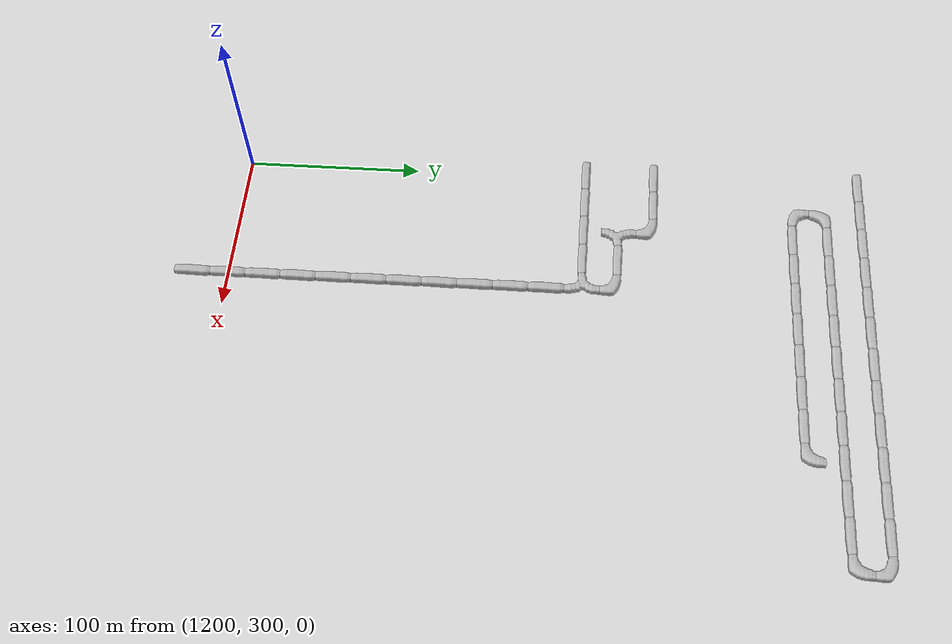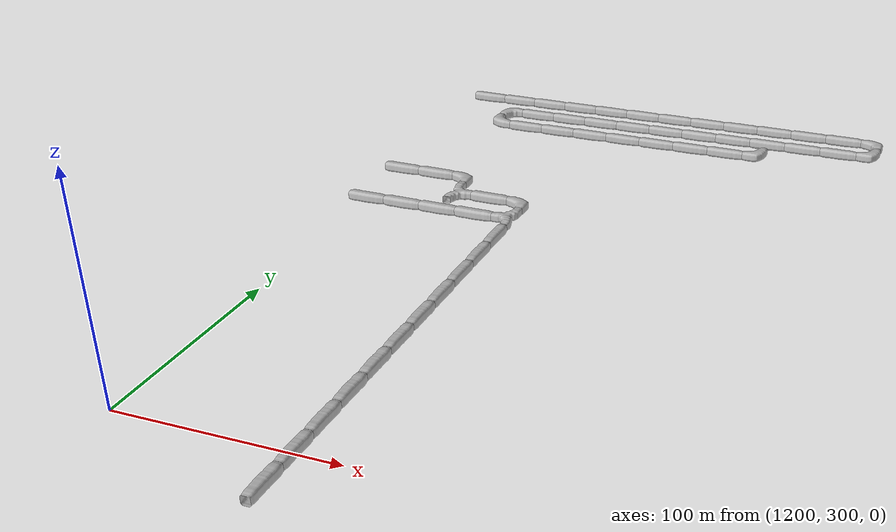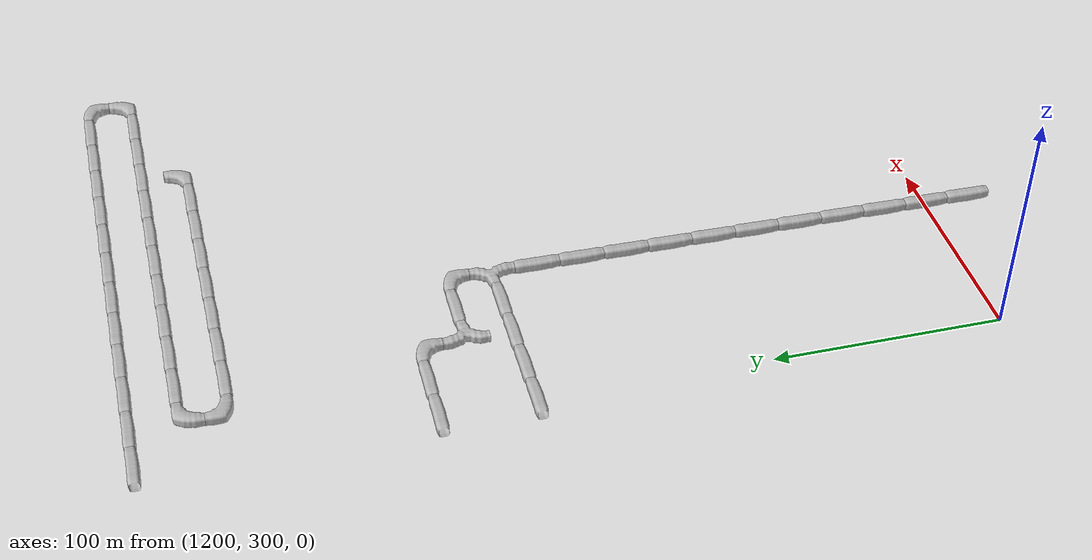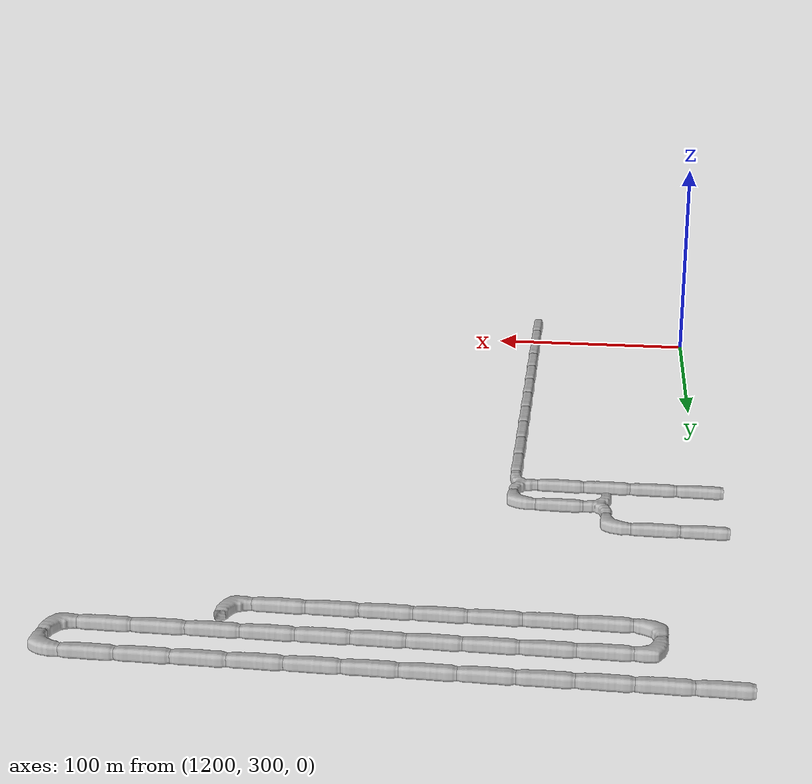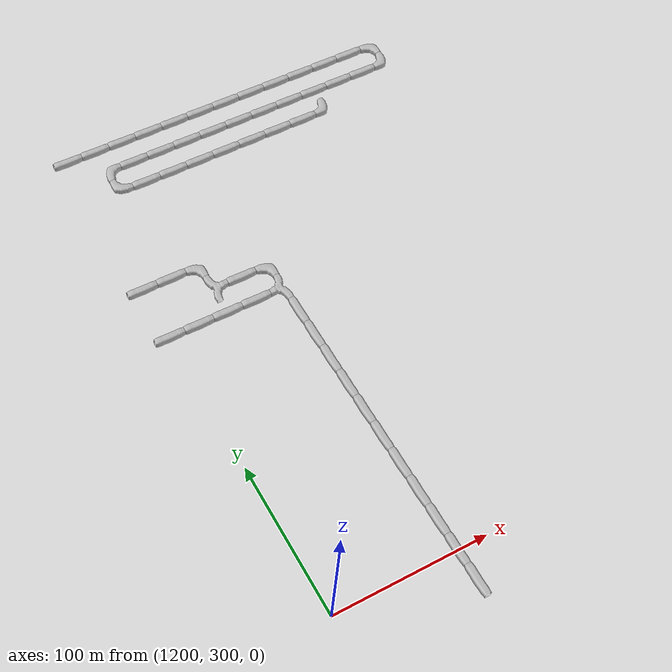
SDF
<sdf version="1.6">
 <world name="cave_32000_2">
  <include>
   <static>true</static>
   <name>cave_64_14</name>
   <pose>1280 280 0 0 0 0.0</pose>
   <uri>model://cave_straight_20m</uri>
  </include>
  <include>
   <static>true</static>
   <name>cave_64_15</name>
   <pose>1280 300 0 0 0 0.0</pose>
   <uri>model://cave_straight_20m</uri>
  </include>
  <include>
   <static>true</static>
   <name>cave_64_16</name>
   <pose>1280 320 0 0 0 0.0</pose>
   <uri>model://cave_straight_20m</uri>
  </include>
  <include>
   <static>true</static>
   <name>cave_64_17</name>
   <pose>1280 340 0 0 0 0.0</pose>
   <uri>model://cave_straight_20m</uri>
  </include>
  <include>
   <static>true</static>
   <name>cave_64_18</name>
   <pose>1280 360 0 0 0 0.0</pose>
   <uri>model://cave_straight_20m</uri>
  </include>
  <include>
   <static>true</static>
   <name>cave_64_19</name>
   <pose>1280 380 0 0 0 0.0</pose>
   <uri>model://cave_straight_20m</uri>
  </include>
  <include>
   <static>true</static>
   <name>cave_64_20</name>
   <pose>1280 400 0 0 0 0.0</pose>
   <uri>model://cave_straight_20m</uri>
  </include>
  <include>
   <static>true</static>
   <name>cave_64_21</name>
   <pose>1280 420 0 0 0 0.0</pose>
   <uri>model://cave_straight_20m</uri>
  </include>
  <include>
   <static>true</static>
   <name>cave_64_22</name>
   <pose>1280 440 0 0 0 0.0</pose>
   <uri>model://cave_straight_20m</uri>
  </include>
  <include>
   <static>true</static>
   <name>cave_64_23</name>
   <pose>1280 460 0 0 0 0.0</pose>
   <uri>model://cave_straight_20m</uri>
  </include>
  <include>
   <static>true</static>
   <name>cave_64_24</name>
   <pose>1280 480 0 0 0 0.0</pose>
   <uri>model://cave_straight_20m</uri>
  </include>
  <include>
   <static>true</static>
   <name>cave_64_25</name>
   <pose>1280 500 0 0 0 1.5707963267948966</pose>
   <uri>model://cave_3way_20m</uri>
  </include>
  <include>
   <static>true</static>
   <name>cave_63_25</name>
   <pose>1260 500 0 0 0 1.5707963267948966</pose>
   <uri>model://cave_straight_20m</uri>
  </include>
  <include>
   <static>true</static>
   <name>cave_62_25</name>
   <pose>1240 500 0 0 0 1.5707963267948966</pose>
   <uri>model://cave_straight_20m</uri>
  </include>
  <include>
   <static>true</static>
   <name>cave_61_25</name>
   <pose>1220 500 0 0 0 1.5707963267948966</pose>
   <uri>model://cave_straight_20m</uri>
  </include>
  <include>
   <static>true</static>
   <name>cave_60_25</name>
   <pose>1200 500 0 0 0 1.5707963267948966</pose>
   <uri>model://cave_straight_20m</uri>
  </include>
  <include>
   <static>true</static>
   <name>cave_64_26</name>
   <pose>1280 520 0 0 0 3.141592653589793</pose>
   <uri>model://cave_L_20m</uri>
  </include>
  <include>
   <static>true</static>
   <name>cave_63_26</name>
   <pose>1260 520 0 0 0 1.5707963267948966</pose>
   <uri>model://cave_straight_20m</uri>
  </include>
  <include>
   <static>true</static>
   <name>cave_62_26</name>
   <pose>1240 520 0 0 0 -1.5707963267948966</pose>
   <uri>model://cave_3way_20m</uri>
  </include>
  <include>
   <static>true</static>
   <name>cave_62_27</name>
   <pose>1240 540 0 0 0 3.141592653589793</pose>
   <uri>model://cave_L_20m</uri>
  </include>
  <include>
   <static>true</static>
   <name>cave_61_27</name>
   <pose>1220 540 0 0 0 1.5707963267948966</pose>
   <uri>model://cave_straight_20m</uri>
  </include>
  <include>
   <static>true</static>
   <name>cave_60_27</name>
   <pose>1200 540 0 0 0 1.5707963267948966</pose>
   <uri>model://cave_straight_20m</uri>
  </include>
  <include>
   <static>true</static>
   <name>cave_60_33</name>
   <pose>1200 660 0 0 0 1.5707963267948966</pose>
   <uri>model://cave_straight_20m</uri>
  </include>
  <include>
   <static>true</static>
   <name>cave_61_33</name>
   <pose>1220 660 0 0 0 1.5707963267948966</pose>
   <uri>model://cave_straight_20m</uri>
  </include>
  <include>
   <static>true</static>
   <name>cave_62_33</name>
   <pose>1240 660 0 0 0 1.5707963267948966</pose>
   <uri>model://cave_straight_20m</uri>
  </include>
  <include>
   <static>true</static>
   <name>cave_63_33</name>
   <pose>1260 660 0 0 0 1.5707963267948966</pose>
   <uri>model://cave_straight_20m</uri>
  </include>
  <include>
   <static>true</static>
   <name>cave_64_33</name>
   <pose>1280 660 0 0 0 1.5707963267948966</pose>
   <uri>model://cave_straight_20m</uri>
  </include>
  <include>
   <static>true</static>
   <name>cave_65_33</name>
   <pose>1300 660 0 0 0 1.5707963267948966</pose>
   <uri>model://cave_straight_20m</uri>
  </include>
  <include>
   <static>true</static>
   <name>cave_66_33</name>
   <pose>1320 660 0 0 0 1.5707963267948966</pose>
   <uri>model://cave_straight_20m</uri>
  </include>
  <include>
   <static>true</static>
   <name>cave_67_33</name>
   <pose>1340 660 0 0 0 1.5707963267948966</pose>
   <uri>model://cave_straight_20m</uri>
  </include>
  <include>
   <static>true</static>
   <name>cave_68_33</name>
   <pose>1360 660 0 0 0 1.5707963267948966</pose>
   <uri>model://cave_straight_20m</uri>
  </include>
  <include>
   <static>true</static>
   <name>cave_69_33</name>
   <pose>1380 660 0 0 0 1.5707963267948966</pose>
   <uri>model://cave_straight_20m</uri>
  </include>
  <include>
   <static>true</static>
   <name>cave_70_33</name>
   <pose>1400 660 0 0 0 1.5707963267948966</pose>
   <uri>model://cave_straight_20m</uri>
  </include>
  <include>
   <static>true</static>
   <name>cave_71_33</name>
   <pose>1420 660 0 0 0 1.5707963267948966</pose>
   <uri>model://cave_straight_20m</uri>
  </include>
  <include>
   <static>true</static>
   <name>cave_72_33</name>
   <pose>1440 660 0 0 0 3.141592653589793</pose>
   <uri>model://cave_L_20m</uri>
  </include>
  <include>
   <static>true</static>
   <name>cave_72_32</name>
   <pose>1440 640 0 0 0 1.5707963267948966</pose>
   <uri>model://cave_L_20m</uri>
  </include>
  <include>
   <static>true</static>
   <name>cave_71_32</name>
   <pose>1420 640 0 0 0 1.5707963267948966</pose>
   <uri>model://cave_straight_20m</uri>
  </include>
  <include>
   <static>true</static>
   <name>cave_70_32</name>
   <pose>1400 640 0 0 0 1.5707963267948966</pose>
   <uri>model://cave_straight_20m</uri>
  </include>
  <include>
   <static>true</static>
   <name>cave_69_32</name>
   <pose>1380 640 0 0 0 1.5707963267948966</pose>
   <uri>model://cave_straight_20m</uri>
  </include>
  <include>
   <static>true</static>
   <name>cave_68_32</name>
   <pose>1360 640 0 0 0 1.5707963267948966</pose>
   <uri>model://cave_straight_20m</uri>
  </include>
  <include>
   <static>true</static>
   <name>cave_67_32</name>
   <pose>1340 640 0 0 0 1.5707963267948966</pose>
   <uri>model://cave_straight_20m</uri>
  </include>
  <include>
   <static>true</static>
   <name>cave_66_32</name>
   <pose>1320 640 0 0 0 1.5707963267948966</pose>
   <uri>model://cave_straight_20m</uri>
  </include>
  <include>
   <static>true</static>
   <name>cave_65_32</name>
   <pose>1300 640 0 0 0 1.5707963267948966</pose>
   <uri>model://cave_straight_20m</uri>
  </include>
  <include>
   <static>true</static>
   <name>cave_64_32</name>
   <pose>1280 640 0 0 0 1.5707963267948966</pose>
   <uri>model://cave_straight_20m</uri>
  </include>
  <include>
   <static>true</static>
   <name>cave_63_32</name>
   <pose>1260 640 0 0 0 1.5707963267948966</pose>
   <uri>model://cave_straight_20m</uri>
  </include>
  <include>
   <static>true</static>
   <name>cave_62_32</name>
   <pose>1240 640 0 0 0 1.5707963267948966</pose>
   <uri>model://cave_straight_20m</uri>
  </include>
  <include>
   <static>true</static>
   <name>cave_61_32</name>
   <pose>1220 640 0 0 0 -1.5707963267948966</pose>
   <uri>model://cave_L_20m</uri>
  </include>
  <include>
   <static>true</static>
   <name>cave_61_31</name>
   <pose>1220 620 0 0 0 0.0</pose>
   <uri>model://cave_L_20m</uri>
  </include>
  <include>
   <static>true</static>
   <name>cave_62_31</name>
   <pose>1240 620 0 0 0 1.5707963267948966</pose>
   <uri>model://cave_straight_20m</uri>
  </include>
  <include>
   <static>true</static>
   <name>cave_63_31</name>
   <pose>1260 620 0 0 0 1.5707963267948966</pose>
   <uri>model://cave_straight_20m</uri>
  </include>
  <include>
   <static>true</static>
   <name>cave_64_31</name>
   <pose>1280 620 0 0 0 1.5707963267948966</pose>
   <uri>model://cave_straight_20m</uri>
  </include>
  <include>
   <static>true</static>
   <name>cave_65_31</name>
   <pose>1300 620 0 0 0 1.5707963267948966</pose>
   <uri>model://cave_straight_20m</uri>
  </include>
  <include>
   <static>true</static>
   <name>cave_66_31</name>
   <pose>1320 620 0 0 0 1.5707963267948966</pose>
   <uri>model://cave_straight_20m</uri>
  </include>
  <include>
   <static>true</static>
   <name>cave_67_31</name>
   <pose>1340 620 0 0 0 1.5707963267948966</pose>
   <uri>model://cave_straight_20m</uri>
  </include>
  <include>
   <static>true</static>
   <name>cave_68_31</name>
   <pose>1360 620 0 0 0 1.5707963267948966</pose>
   <uri>model://cave_straight_20m</uri>
  </include>
  <include>
   <static>true</static>
   <name>cave_69_31</name>
   <pose>1380 620 0 0 0 1.5707963267948966</pose>
   <uri>model://cave_L_20m</uri>
  </include>
 </world>
</sdf>
